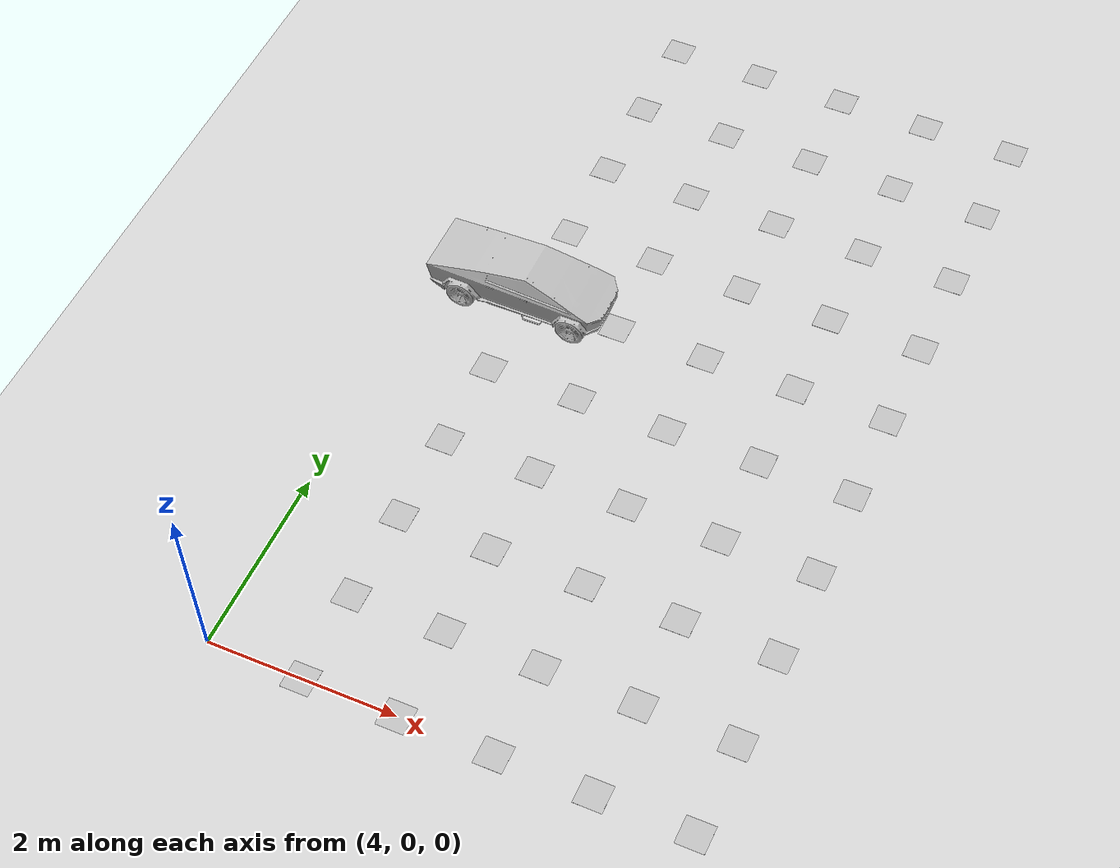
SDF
<sdf version="1.6">
 <world name="aruco_field">
  <include><uri>model://sun</uri></include>
  <include><uri>model://ground_plane</uri></include>
  <model name="car">
   <pose>5 5 0.001 0 0 0</pose>
   <link name="link">
    <gravity>0</gravity>
    <visual name="visual" cast_shadows="true">
     <geometry><mesh><uri>file://cybertruck_new_textured.dae</uri><scale>1 1 1</scale></mesh></geometry>
    </visual>
   </link>
   <plugin name="random_movement" filename="libRandomMovementPlugin.so">
    <field_size_x>9</field_size_x>
    <field_size_y>9</field_size_y>
    <object_size_x>2.0</object_size_x>
    <object_size_y>0.8</object_size_y>
   </plugin>
  </model>
  <model name="aruco_marker_005">
   <static>true</static>
   <pose>5.0 0.0 0.001 0 0 0</pose>
   <link name="link">
    <visual name="visual">
     <geometry><box><size>0.3 0.3 0.001</size></box></geometry>
     <material>
      <script>
       <uri>model://aruco_models/materials/scripts</uri>
       <uri>model://aruco_models/materials/textures</uri>
       <name>Aruco/Material_005</name>
      </script>
     </material>
    </visual>
    <collision name="collision"><geometry><box><size>0.3 0.3 0.001</size></box></geometry></collision>
   </link>
  </model>
  <model name="aruco_marker_006">
   <static>true</static>
   <pose>6.0 0.0 0.001 0 0 0</pose>
   <link name="link">
    <visual name="visual">
     <geometry><box><size>0.3 0.3 0.001</size></box></geometry>
     <material>
      <script>
       <uri>model://aruco_models/materials/scripts</uri>
       <uri>model://aruco_models/materials/textures</uri>
       <name>Aruco/Material_006</name>
      </script>
     </material>
    </visual>
    <collision name="collision"><geometry><box><size>0.3 0.3 0.001</size></box></geometry></collision>
   </link>
  </model>
  <model name="aruco_marker_007">
   <static>true</static>
   <pose>7.0 0.0 0.001 0 0 0</pose>
   <link name="link">
    <visual name="visual">
     <geometry><box><size>0.3 0.3 0.001</size></box></geometry>
     <material>
      <script>
       <uri>model://aruco_models/materials/scripts</uri>
       <uri>model://aruco_models/materials/textures</uri>
       <name>Aruco/Material_007</name>
      </script>
     </material>
    </visual>
    <collision name="collision"><geometry><box><size>0.3 0.3 0.001</size></box></geometry></collision>
   </link>
  </model>
  <model name="aruco_marker_008">
   <static>true</static>
   <pose>8.0 0.0 0.001 0 0 0</pose>
   <link name="link">
    <visual name="visual">
     <geometry><box><size>0.3 0.3 0.001</size></box></geometry>
     <material>
      <script>
       <uri>model://aruco_models/materials/scripts</uri>
       <uri>model://aruco_models/materials/textures</uri>
       <name>Aruco/Material_008</name>
      </script>
     </material>
    </visual>
    <collision name="collision"><geometry><box><size>0.3 0.3 0.001</size></box></geometry></collision>
   </link>
  </model>
  <model name="aruco_marker_009">
   <static>true</static>
   <pose>9.0 0.0 0.001 0 0 0</pose>
   <link name="link">
    <visual name="visual">
     <geometry><box><size>0.3 0.3 0.001</size></box></geometry>
     <material>
      <script>
       <uri>model://aruco_models/materials/scripts</uri>
       <uri>model://aruco_models/materials/textures</uri>
       <name>Aruco/Material_009</name>
      </script>
     </material>
    </visual>
    <collision name="collision"><geometry><box><size>0.3 0.3 0.001</size></box></geometry></collision>
   </link>
  </model>
  <model name="aruco_marker_015">
   <static>true</static>
   <pose>5.0 1.0 0.001 0 0 0</pose>
   <link name="link">
    <visual name="visual">
     <geometry><box><size>0.3 0.3 0.001</size></box></geometry>
     <material>
      <script>
       <uri>model://aruco_models/materials/scripts</uri>
       <uri>model://aruco_models/materials/textures</uri>
       <name>Aruco/Material_015</name>
      </script>
     </material>
    </visual>
    <collision name="collision"><geometry><box><size>0.3 0.3 0.001</size></box></geometry></collision>
   </link>
  </model>
  <model name="aruco_marker_016">
   <static>true</static>
   <pose>6.0 1.0 0.001 0 0 0</pose>
   <link name="link">
    <visual name="visual">
     <geometry><box><size>0.3 0.3 0.001</size></box></geometry>
     <material>
      <script>
       <uri>model://aruco_models/materials/scripts</uri>
       <uri>model://aruco_models/materials/textures</uri>
       <name>Aruco/Material_016</name>
      </script>
     </material>
    </visual>
    <collision name="collision"><geometry><box><size>0.3 0.3 0.001</size></box></geometry></collision>
   </link>
  </model>
  <model name="aruco_marker_017">
   <static>true</static>
   <pose>7.0 1.0 0.001 0 0 0</pose>
   <link name="link">
    <visual name="visual">
     <geometry><box><size>0.3 0.3 0.001</size></box></geometry>
     <material>
      <script>
       <uri>model://aruco_models/materials/scripts</uri>
       <uri>model://aruco_models/materials/textures</uri>
       <name>Aruco/Material_017</name>
      </script>
     </material>
    </visual>
    <collision name="collision"><geometry><box><size>0.3 0.3 0.001</size></box></geometry></collision>
   </link>
  </model>
  <model name="aruco_marker_018">
   <static>true</static>
   <pose>8.0 1.0 0.001 0 0 0</pose>
   <link name="link">
    <visual name="visual">
     <geometry><box><size>0.3 0.3 0.001</size></box></geometry>
     <material>
      <script>
       <uri>model://aruco_models/materials/scripts</uri>
       <uri>model://aruco_models/materials/textures</uri>
       <name>Aruco/Material_018</name>
      </script>
     </material>
    </visual>
    <collision name="collision"><geometry><box><size>0.3 0.3 0.001</size></box></geometry></collision>
   </link>
  </model>
  <model name="aruco_marker_019">
   <static>true</static>
   <pose>9.0 1.0 0.001 0 0 0</pose>
   <link name="link">
    <visual name="visual">
     <geometry><box><size>0.3 0.3 0.001</size></box></geometry>
     <material>
      <script>
       <uri>model://aruco_models/materials/scripts</uri>
       <uri>model://aruco_models/materials/textures</uri>
       <name>Aruco/Material_019</name>
      </script>
     </material>
    </visual>
    <collision name="collision"><geometry><box><size>0.3 0.3 0.001</size></box></geometry></collision>
   </link>
  </model>
  <model name="aruco_marker_025">
   <static>true</static>
   <pose>5.0 2.0 0.001 0 0 0</pose>
   <link name="link">
    <visual name="visual">
     <geometry><box><size>0.3 0.3 0.001</size></box></geometry>
     <material>
      <script>
       <uri>model://aruco_models/materials/scripts</uri>
       <uri>model://aruco_models/materials/textures</uri>
       <name>Aruco/Material_025</name>
      </script>
     </material>
    </visual>
    <collision name="collision"><geometry><box><size>0.3 0.3 0.001</size></box></geometry></collision>
   </link>
  </model>
  <model name="aruco_marker_026">
   <static>true</static>
   <pose>6.0 2.0 0.001 0 0 0</pose>
   <link name="link">
    <visual name="visual">
     <geometry><box><size>0.3 0.3 0.001</size></box></geometry>
     <material>
      <script>
       <uri>model://aruco_models/materials/scripts</uri>
       <uri>model://aruco_models/materials/textures</uri>
       <name>Aruco/Material_026</name>
      </script>
     </material>
    </visual>
    <collision name="collision"><geometry><box><size>0.3 0.3 0.001</size></box></geometry></collision>
   </link>
  </model>
  <model name="aruco_marker_027">
   <static>true</static>
   <pose>7.0 2.0 0.001 0 0 0</pose>
   <link name="link">
    <visual name="visual">
     <geometry><box><size>0.3 0.3 0.001</size></box></geometry>
     <material>
      <script>
       <uri>model://aruco_models/materials/scripts</uri>
       <uri>model://aruco_models/materials/textures</uri>
       <name>Aruco/Material_027</name>
      </script>
     </material>
    </visual>
    <collision name="collision"><geometry><box><size>0.3 0.3 0.001</size></box></geometry></collision>
   </link>
  </model>
  <model name="aruco_marker_028">
   <static>true</static>
   <pose>8.0 2.0 0.001 0 0 0</pose>
   <link name="link">
    <visual name="visual">
     <geometry><box><size>0.3 0.3 0.001</size></box></geometry>
     <material>
      <script>
       <uri>model://aruco_models/materials/scripts</uri>
       <uri>model://aruco_models/materials/textures</uri>
       <name>Aruco/Material_028</name>
      </script>
     </material>
    </visual>
    <collision name="collision"><geometry><box><size>0.3 0.3 0.001</size></box></geometry></collision>
   </link>
  </model>
  <model name="aruco_marker_029">
   <static>true</static>
   <pose>9.0 2.0 0.001 0 0 0</pose>
   <link name="link">
    <visual name="visual">
     <geometry><box><size>0.3 0.3 0.001</size></box></geometry>
     <material>
      <script>
       <uri>model://aruco_models/materials/scripts</uri>
       <uri>model://aruco_models/materials/textures</uri>
       <name>Aruco/Material_029</name>
      </script>
     </material>
    </visual>
    <collision name="collision"><geometry><box><size>0.3 0.3 0.001</size></box></geometry></collision>
   </link>
  </model>
  <model name="aruco_marker_035">
   <static>true</static>
   <pose>5.0 3.0 0.001 0 0 0</pose>
   <link name="link">
    <visual name="visual">
     <geometry><box><size>0.3 0.3 0.001</size></box></geometry>
     <material>
      <script>
       <uri>model://aruco_models/materials/scripts</uri>
       <uri>model://aruco_models/materials/textures</uri>
       <name>Aruco/Material_035</name>
      </script>
     </material>
    </visual>
    <collision name="collision"><geometry><box><size>0.3 0.3 0.001</size></box></geometry></collision>
   </link>
  </model>
  <model name="aruco_marker_036">
   <static>true</static>
   <pose>6.0 3.0 0.001 0 0 0</pose>
   <link name="link">
    <visual name="visual">
     <geometry><box><size>0.3 0.3 0.001</size></box></geometry>
     <material>
      <script>
       <uri>model://aruco_models/materials/scripts</uri>
       <uri>model://aruco_models/materials/textures</uri>
       <name>Aruco/Material_036</name>
      </script>
     </material>
    </visual>
    <collision name="collision"><geometry><box><size>0.3 0.3 0.001</size></box></geometry></collision>
   </link>
  </model>
  <model name="aruco_marker_037">
   <static>true</static>
   <pose>7.0 3.0 0.001 0 0 0</pose>
   <link name="link">
    <visual name="visual">
     <geometry><box><size>0.3 0.3 0.001</size></box></geometry>
     <material>
      <script>
       <uri>model://aruco_models/materials/scripts</uri>
       <uri>model://aruco_models/materials/textures</uri>
       <name>Aruco/Material_037</name>
      </script>
     </material>
    </visual>
    <collision name="collision"><geometry><box><size>0.3 0.3 0.001</size></box></geometry></collision>
   </link>
  </model>
  <model name="aruco_marker_038">
   <static>true</static>
   <pose>8.0 3.0 0.001 0 0 0</pose>
   <link name="link">
    <visual name="visual">
     <geometry><box><size>0.3 0.3 0.001</size></box></geometry>
     <material>
      <script>
       <uri>model://aruco_models/materials/scripts</uri>
       <uri>model://aruco_models/materials/textures</uri>
       <name>Aruco/Material_038</name>
      </script>
     </material>
    </visual>
    <collision name="collision"><geometry><box><size>0.3 0.3 0.001</size></box></geometry></collision>
   </link>
  </model>
  <model name="aruco_marker_039">
   <static>true</static>
   <pose>9.0 3.0 0.001 0 0 0</pose>
   <link name="link">
    <visual name="visual">
     <geometry><box><size>0.3 0.3 0.001</size></box></geometry>
     <material>
      <script>
       <uri>model://aruco_models/materials/scripts</uri>
       <uri>model://aruco_models/materials/textures</uri>
       <name>Aruco/Material_039</name>
      </script>
     </material>
    </visual>
    <collision name="collision"><geometry><box><size>0.3 0.3 0.001</size></box></geometry></collision>
   </link>
  </model>
  <model name="aruco_marker_045">
   <static>true</static>
   <pose>5.0 4.0 0.001 0 0 0</pose>
   <link name="link">
    <visual name="visual">
     <geometry><box><size>0.3 0.3 0.001</size></box></geometry>
     <material>
      <script>
       <uri>model://aruco_models/materials/scripts</uri>
       <uri>model://aruco_models/materials/textures</uri>
       <name>Aruco/Material_045</name>
      </script>
     </material>
    </visual>
    <collision name="collision"><geometry><box><size>0.3 0.3 0.001</size></box></geometry></collision>
   </link>
  </model>
  <model name="aruco_marker_046">
   <static>true</static>
   <pose>6.0 4.0 0.001 0 0 0</pose>
   <link name="link">
    <visual name="visual">
     <geometry><box><size>0.3 0.3 0.001</size></box></geometry>
     <material>
      <script>
       <uri>model://aruco_models/materials/scripts</uri>
       <uri>model://aruco_models/materials/textures</uri>
       <name>Aruco/Material_046</name>
      </script>
     </material>
    </visual>
    <collision name="collision"><geometry><box><size>0.3 0.3 0.001</size></box></geometry></collision>
   </link>
  </model>
  <model name="aruco_marker_047">
   <static>true</static>
   <pose>7.0 4.0 0.001 0 0 0</pose>
   <link name="link">
    <visual name="visual">
     <geometry><box><size>0.3 0.3 0.001</size></box></geometry>
     <material>
      <script>
       <uri>model://aruco_models/materials/scripts</uri>
       <uri>model://aruco_models/materials/textures</uri>
       <name>Aruco/Material_047</name>
      </script>
     </material>
    </visual>
    <collision name="collision"><geometry><box><size>0.3 0.3 0.001</size></box></geometry></collision>
   </link>
  </model>
  <model name="aruco_marker_048">
   <static>true</static>
   <pose>8.0 4.0 0.001 0 0 0</pose>
   <link name="link">
    <visual name="visual">
     <geometry><box><size>0.3 0.3 0.001</size></box></geometry>
     <material>
      <script>
       <uri>model://aruco_models/materials/scripts</uri>
       <uri>model://aruco_models/materials/textures</uri>
       <name>Aruco/Material_048</name>
      </script>
     </material>
    </visual>
    <collision name="collision"><geometry><box><size>0.3 0.3 0.001</size></box></geometry></collision>
   </link>
  </model>
  <model name="aruco_marker_049">
   <static>true</static>
   <pose>9.0 4.0 0.001 0 0 0</pose>
   <link name="link">
    <visual name="visual">
     <geometry><box><size>0.3 0.3 0.001</size></box></geometry>
     <material>
      <script>
       <uri>model://aruco_models/materials/scripts</uri>
       <uri>model://aruco_models/materials/textures</uri>
       <name>Aruco/Material_049</name>
      </script>
     </material>
    </visual>
    <collision name="collision"><geometry><box><size>0.3 0.3 0.001</size></box></geometry></collision>
   </link>
  </model>
  <model name="aruco_marker_055">
   <static>true</static>
   <pose>5.0 5.0 0.001 0 0 0</pose>
   <link name="link">
    <visual name="visual">
     <geometry><box><size>0.3 0.3 0.001</size></box></geometry>
     <material>
      <script>
       <uri>model://aruco_models/materials/scripts</uri>
       <uri>model://aruco_models/materials/textures</uri>
       <name>Aruco/Material_055</name>
      </script>
     </material>
    </visual>
    <collision name="collision"><geometry><box><size>0.3 0.3 0.001</size></box></geometry></collision>
   </link>
  </model>
  <model name="aruco_marker_056">
   <static>true</static>
   <pose>6.0 5.0 0.001 0 0 0</pose>
   <link name="link">
    <visual name="visual">
     <geometry><box><size>0.3 0.3 0.001</size></box></geometry>
     <material>
      <script>
       <uri>model://aruco_models/materials/scripts</uri>
       <uri>model://aruco_models/materials/textures</uri>
       <name>Aruco/Material_056</name>
      </script>
     </material>
    </visual>
    <collision name="collision"><geometry><box><size>0.3 0.3 0.001</size></box></geometry></collision>
   </link>
  </model>
  <model name="aruco_marker_057">
   <static>true</static>
   <pose>7.0 5.0 0.001 0 0 0</pose>
   <link name="link">
    <visual name="visual">
     <geometry><box><size>0.3 0.3 0.001</size></box></geometry>
     <material>
      <script>
       <uri>model://aruco_models/materials/scripts</uri>
       <uri>model://aruco_models/materials/textures</uri>
       <name>Aruco/Material_057</name>
      </script>
     </material>
    </visual>
    <collision name="collision"><geometry><box><size>0.3 0.3 0.001</size></box></geometry></collision>
   </link>
  </model>
  <model name="aruco_marker_058">
   <static>true</static>
   <pose>8.0 5.0 0.001 0 0 0</pose>
   <link name="link">
    <visual name="visual">
     <geometry><box><size>0.3 0.3 0.001</size></box></geometry>
     <material>
      <script>
       <uri>model://aruco_models/materials/scripts</uri>
       <uri>model://aruco_models/materials/textures</uri>
       <name>Aruco/Material_058</name>
      </script>
     </material>
    </visual>
    <collision name="collision"><geometry><box><size>0.3 0.3 0.001</size></box></geometry></collision>
   </link>
  </model>
  <model name="aruco_marker_059">
   <static>true</static>
   <pose>9.0 5.0 0.001 0 0 0</pose>
   <link name="link">
    <visual name="visual">
     <geometry><box><size>0.3 0.3 0.001</size></box></geometry>
     <material>
      <script>
       <uri>model://aruco_models/materials/scripts</uri>
       <uri>model://aruco_models/materials/textures</uri>
       <name>Aruco/Material_059</name>
      </script>
     </material>
    </visual>
    <collision name="collision"><geometry><box><size>0.3 0.3 0.001</size></box></geometry></collision>
   </link>
  </model>
  <model name="aruco_marker_065">
   <static>true</static>
   <pose>5.0 6.0 0.001 0 0 0</pose>
   <link name="link">
    <visual name="visual">
     <geometry><box><size>0.3 0.3 0.001</size></box></geometry>
     <material>
      <script>
       <uri>model://aruco_models/materials/scripts</uri>
       <uri>model://aruco_models/materials/textures</uri>
       <name>Aruco/Material_065</name>
      </script>
     </material>
    </visual>
    <collision name="collision"><geometry><box><size>0.3 0.3 0.001</size></box></geometry></collision>
   </link>
  </model>
  <model name="aruco_marker_066">
   <static>true</static>
   <pose>6.0 6.0 0.001 0 0 0</pose>
   <link name="link">
    <visual name="visual">
     <geometry><box><size>0.3 0.3 0.001</size></box></geometry>
     <material>
      <script>
       <uri>model://aruco_models/materials/scripts</uri>
       <uri>model://aruco_models/materials/textures</uri>
       <name>Aruco/Material_066</name>
      </script>
     </material>
    </visual>
    <collision name="collision"><geometry><box><size>0.3 0.3 0.001</size></box></geometry></collision>
   </link>
  </model>
  <model name="aruco_marker_067">
   <static>true</static>
   <pose>7.0 6.0 0.001 0 0 0</pose>
   <link name="link">
    <visual name="visual">
     <geometry><box><size>0.3 0.3 0.001</size></box></geometry>
     <material>
      <script>
       <uri>model://aruco_models/materials/scripts</uri>
       <uri>model://aruco_models/materials/textures</uri>
       <name>Aruco/Material_067</name>
      </script>
     </material>
    </visual>
    <collision name="collision"><geometry><box><size>0.3 0.3 0.001</size></box></geometry></collision>
   </link>
  </model>
  <model name="aruco_marker_068">
   <static>true</static>
   <pose>8.0 6.0 0.001 0 0 0</pose>
   <link name="link">
    <visual name="visual">
     <geometry><box><size>0.3 0.3 0.001</size></box></geometry>
     <material>
      <script>
       <uri>model://aruco_models/materials/scripts</uri>
       <uri>model://aruco_models/materials/textures</uri>
       <name>Aruco/Material_068</name>
      </script>
     </material>
    </visual>
    <collision name="collision"><geometry><box><size>0.3 0.3 0.001</size></box></geometry></collision>
   </link>
  </model>
  <model name="aruco_marker_069">
   <static>true</static>
   <pose>9.0 6.0 0.001 0 0 0</pose>
   <link name="link">
    <visual name="visual">
     <geometry><box><size>0.3 0.3 0.001</size></box></geometry>
     <material>
      <script>
       <uri>model://aruco_models/materials/scripts</uri>
       <uri>model://aruco_models/materials/textures</uri>
       <name>Aruco/Material_069</name>
      </script>
     </material>
    </visual>
    <collision name="collision"><geometry><box><size>0.3 0.3 0.001</size></box></geometry></collision>
   </link>
  </model>
  <model name="aruco_marker_075">
   <static>true</static>
   <pose>5.0 7.0 0.001 0 0 0</pose>
   <link name="link">
    <visual name="visual">
     <geometry><box><size>0.3 0.3 0.001</size></box></geometry>
     <material>
      <script>
       <uri>model://aruco_models/materials/scripts</uri>
       <uri>model://aruco_models/materials/textures</uri>
       <name>Aruco/Material_075</name>
      </script>
     </material>
    </visual>
    <collision name="collision"><geometry><box><size>0.3 0.3 0.001</size></box></geometry></collision>
   </link>
  </model>
  <model name="aruco_marker_076">
   <static>true</static>
   <pose>6.0 7.0 0.001 0 0 0</pose>
   <link name="link">
    <visual name="visual">
     <geometry><box><size>0.3 0.3 0.001</size></box></geometry>
     <material>
      <script>
       <uri>model://aruco_models/materials/scripts</uri>
       <uri>model://aruco_models/materials/textures</uri>
       <name>Aruco/Material_076</name>
      </script>
     </material>
    </visual>
    <collision name="collision"><geometry><box><size>0.3 0.3 0.001</size></box></geometry></collision>
   </link>
  </model>
  <model name="aruco_marker_077">
   <static>true</static>
   <pose>7.0 7.0 0.001 0 0 0</pose>
   <link name="link">
    <visual name="visual">
     <geometry><box><size>0.3 0.3 0.001</size></box></geometry>
     <material>
      <script>
       <uri>model://aruco_models/materials/scripts</uri>
       <uri>model://aruco_models/materials/textures</uri>
       <name>Aruco/Material_077</name>
      </script>
     </material>
    </visual>
    <collision name="collision"><geometry><box><size>0.3 0.3 0.001</size></box></geometry></collision>
   </link>
  </model>
  <model name="aruco_marker_078">
   <static>true</static>
   <pose>8.0 7.0 0.001 0 0 0</pose>
   <link name="link">
    <visual name="visual">
     <geometry><box><size>0.3 0.3 0.001</size></box></geometry>
     <material>
      <script>
       <uri>model://aruco_models/materials/scripts</uri>
       <uri>model://aruco_models/materials/textures</uri>
       <name>Aruco/Material_078</name>
      </script>
     </material>
    </visual>
    <collision name="collision"><geometry><box><size>0.3 0.3 0.001</size></box></geometry></collision>
   </link>
  </model>
  <model name="aruco_marker_079">
   <static>true</static>
   <pose>9.0 7.0 0.001 0 0 0</pose>
   <link name="link">
    <visual name="visual">
     <geometry><box><size>0.3 0.3 0.001</size></box></geometry>
     <material>
      <script>
       <uri>model://aruco_models/materials/scripts</uri>
       <uri>model://aruco_models/materials/textures</uri>
       <name>Aruco/Material_079</name>
      </script>
     </material>
    </visual>
    <collision name="collision"><geometry><box><size>0.3 0.3 0.001</size></box></geometry></collision>
   </link>
  </model>
  <model name="aruco_marker_085">
   <static>true</static>
   <pose>5.0 8.0 0.001 0 0 0</pose>
   <link name="link">
    <visual name="visual">
     <geometry><box><size>0.3 0.3 0.001</size></box></geometry>
     <material>
      <script>
       <uri>model://aruco_models/materials/scripts</uri>
       <uri>model://aruco_models/materials/textures</uri>
       <name>Aruco/Material_085</name>
      </script>
     </material>
    </visual>
    <collision name="collision"><geometry><box><size>0.3 0.3 0.001</size></box></geometry></collision>
   </link>
  </model>
  <model name="aruco_marker_086">
   <static>true</static>
   <pose>6.0 8.0 0.001 0 0 0</pose>
   <link name="link">
    <visual name="visual">
     <geometry><box><size>0.3 0.3 0.001</size></box></geometry>
     <material>
      <script>
       <uri>model://aruco_models/materials/scripts</uri>
       <uri>model://aruco_models/materials/textures</uri>
       <name>Aruco/Material_086</name>
      </script>
     </material>
    </visual>
    <collision name="collision"><geometry><box><size>0.3 0.3 0.001</size></box></geometry></collision>
   </link>
  </model>
  <model name="aruco_marker_087">
   <static>true</static>
   <pose>7.0 8.0 0.001 0 0 0</pose>
   <link name="link">
    <visual name="visual">
     <geometry><box><size>0.3 0.3 0.001</size></box></geometry>
     <material>
      <script>
       <uri>model://aruco_models/materials/scripts</uri>
       <uri>model://aruco_models/materials/textures</uri>
       <name>Aruco/Material_087</name>
      </script>
     </material>
    </visual>
    <collision name="collision"><geometry><box><size>0.3 0.3 0.001</size></box></geometry></collision>
   </link>
  </model>
  <model name="aruco_marker_088">
   <static>true</static>
   <pose>8.0 8.0 0.001 0 0 0</pose>
   <link name="link">
    <visual name="visual">
     <geometry><box><size>0.3 0.3 0.001</size></box></geometry>
     <material>
      <script>
       <uri>model://aruco_models/materials/scripts</uri>
       <uri>model://aruco_models/materials/textures</uri>
       <name>Aruco/Material_088</name>
      </script>
     </material>
    </visual>
    <collision name="collision"><geometry><box><size>0.3 0.3 0.001</size></box></geometry></collision>
   </link>
  </model>
  <model name="aruco_marker_089">
   <static>true</static>
   <pose>9.0 8.0 0.001 0 0 0</pose>
   <link name="link">
    <visual name="visual">
     <geometry><box><size>0.3 0.3 0.001</size></box></geometry>
     <material>
      <script>
       <uri>model://aruco_models/materials/scripts</uri>
       <uri>model://aruco_models/materials/textures</uri>
       <name>Aruco/Material_089</name>
      </script>
     </material>
    </visual>
    <collision name="collision"><geometry><box><size>0.3 0.3 0.001</size></box></geometry></collision>
   </link>
  </model>
  <model name="aruco_marker_095">
   <static>true</static>
   <pose>5.0 9.0 0.001 0 0 0</pose>
   <link name="link">
    <visual name="visual">
     <geometry><box><size>0.3 0.3 0.001</size></box></geometry>
     <material>
      <script>
       <uri>model://aruco_models/materials/scripts</uri>
       <uri>model://aruco_models/materials/textures</uri>
       <name>Aruco/Material_095</name>
      </script>
     </material>
    </visual>
    <collision name="collision"><geometry><box><size>0.3 0.3 0.001</size></box></geometry></collision>
   </link>
  </model>
  <model name="aruco_marker_096">
   <static>true</static>
   <pose>6.0 9.0 0.001 0 0 0</pose>
   <link name="link">
    <visual name="visual">
     <geometry><box><size>0.3 0.3 0.001</size></box></geometry>
     <material>
      <script>
       <uri>model://aruco_models/materials/scripts</uri>
       <uri>model://aruco_models/materials/textures</uri>
       <name>Aruco/Material_096</name>
      </script>
     </material>
    </visual>
    <collision name="collision"><geometry><box><size>0.3 0.3 0.001</size></box></geometry></collision>
   </link>
  </model>
  <model name="aruco_marker_097">
   <static>true</static>
   <pose>7.0 9.0 0.001 0 0 0</pose>
   <link name="link">
    <visual name="visual">
     <geometry><box><size>0.3 0.3 0.001</size></box></geometry>
     <material>
      <script>
       <uri>model://aruco_models/materials/scripts</uri>
       <uri>model://aruco_models/materials/textures</uri>
       <name>Aruco/Material_097</name>
      </script>
     </material>
    </visual>
    <collision name="collision"><geometry><box><size>0.3 0.3 0.001</size></box></geometry></collision>
   </link>
  </model>
  <model name="aruco_marker_098">
   <static>true</static>
   <pose>8.0 9.0 0.001 0 0 0</pose>
   <link name="link">
    <visual name="visual">
     <geometry><box><size>0.3 0.3 0.001</size></box></geometry>
     <material>
      <script>
       <uri>model://aruco_models/materials/scripts</uri>
       <uri>model://aruco_models/materials/textures</uri>
       <name>Aruco/Material_098</name>
      </script>
     </material>
    </visual>
    <collision name="collision"><geometry><box><size>0.3 0.3 0.001</size></box></geometry></collision>
   </link>
  </model>
  <model name="aruco_marker_099">
   <static>true</static>
   <pose>9.0 9.0 0.001 0 0 0</pose>
   <link name="link">
    <visual name="visual">
     <geometry><box><size>0.3 0.3 0.001</size></box></geometry>
     <material>
      <script>
       <uri>model://aruco_models/materials/scripts</uri>
       <uri>model://aruco_models/materials/textures</uri>
       <name>Aruco/Material_099</name>
      </script>
     </material>
    </visual>
    <collision name="collision"><geometry><box><size>0.3 0.3 0.001</size></box></geometry></collision>
   </link>
  </model>
 </world>
</sdf>
